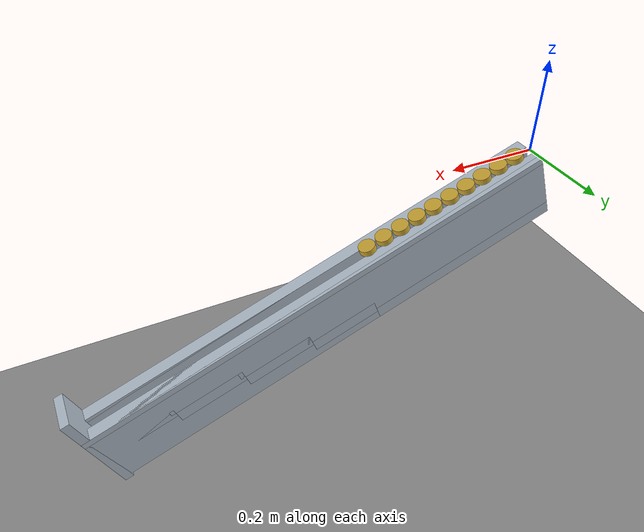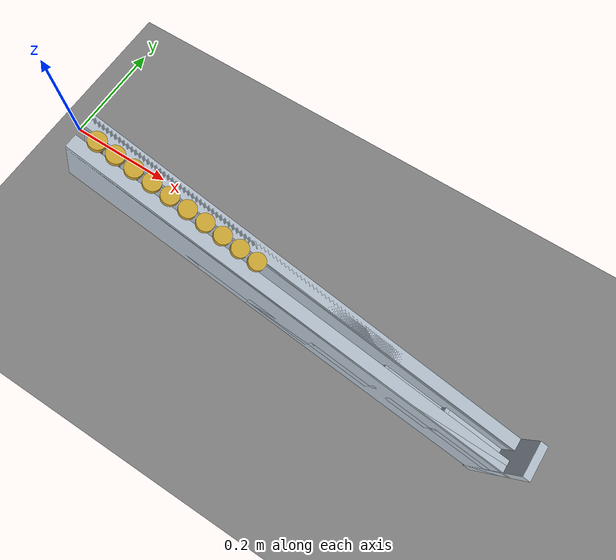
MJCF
<mujoco model="hang"><option timestep="0.0004" gravity="0 0 -9.81" integrator="implicitfast" cone="elliptic" impratio="10"><flag multiccd="enable"/></option>
<visual><global offwidth="1280" offheight="720"/></visual>
<worldbody><light pos="0.5 -1 2" dir="-0.3 0.5 -1"/><camera name="iso" pos="0.5262 -0.9000 0.0585" xyaxes="1.0000 -0.0000 0.0000 0.0000 0.3162 0.9487"/>
<geom name="shelf-1" type="box" pos="0.52366 -0.02700 -0.19858" size="0.56000 0.01500 0.00750" xyaxes="0.939693 0 -0.342020 0 1 0" rgba="0.7 0.75 0.8 1" friction="0.3 0.005 0.0001"/>
<geom name="shelf1" type="box" pos="0.52366 0.02700 -0.19858" size="0.56000 0.01500 0.00750" xyaxes="0.939693 0 -0.342020 0 1 0" rgba="0.7 0.75 0.8 1" friction="0.3 0.005 0.0001"/>
<geom name="side-1" type="box" pos="0.49887 -0.02700 -0.26671" size="0.56000 0.01500 0.08000" xyaxes="0.939693 0 -0.342020 0 1 0" rgba="0.7 0.75 0.8 1" friction="0.3 0.005 0.0001"/>
<geom name="side1" type="box" pos="0.49887 0.02700 -0.26671" size="0.56000 0.01500 0.08000" xyaxes="0.939693 0 -0.342020 0 1 0" rgba="0.7 0.75 0.8 1" friction="0.3 0.005 0.0001"/>
<geom name="floor0" type="box" pos="0.16654 0.00000 -0.21492" size="0.23000 0.04200 0.01500" xyaxes="0.939693 0 -0.342020 0 1 0" rgba="0.7 0.75 0.8 1" friction="0.3 0.005 0.0001"/>
<geom name="floor1" type="box" pos="0.46468 0.00000 -0.30215" size="0.08000 0.04200 0.01500" xyaxes="0.939693 0 -0.342020 0 1 0" rgba="0.7 0.75 0.8 1" friction="0.3 0.005 0.0001"/>
<geom name="riser1" type="box" pos="0.39591 0.00000 -0.27180" size="0.00500 0.04200 0.01010" xyaxes="0.939693 0 -0.342020 0 1 0" rgba="0.7 0.75 0.8 1" friction="0.3 0.005 0.0001"/>
<geom name="floor2" type="box" pos="0.62187 0.00000 -0.33808" size="0.08000 0.04200 0.01500" xyaxes="0.939693 0 -0.342020 0 1 0" rgba="0.7 0.75 0.8 1" friction="0.3 0.005 0.0001"/>
<geom name="riser2" type="box" pos="0.55311 0.00000 -0.30773" size="0.00500 0.04200 0.01010" xyaxes="0.939693 0 -0.342020 0 1 0" rgba="0.7 0.75 0.8 1" friction="0.3 0.005 0.0001"/>
<geom name="floor3" type="box" pos="0.77906 0.00000 -0.37401" size="0.08000 0.04200 0.01500" xyaxes="0.939693 0 -0.342020 0 1 0" rgba="0.7 0.75 0.8 1" friction="0.3 0.005 0.0001"/>
<geom name="riser3" type="box" pos="0.71030 0.00000 -0.34366" size="0.00500 0.04200 0.01010" xyaxes="0.939693 0 -0.342020 0 1 0" rgba="0.7 0.75 0.8 1" friction="0.3 0.005 0.0001"/>
<geom name="floor4" type="box" pos="0.93626 0.00000 -0.40994" size="0.08000 0.04200 0.01500" xyaxes="0.939693 0 -0.342020 0 1 0" rgba="0.7 0.75 0.8 1" friction="0.3 0.005 0.0001"/>
<geom name="riser4" type="box" pos="0.86749 0.00000 -0.37959" size="0.00500 0.04200 0.01010" xyaxes="0.939693 0 -0.342020 0 1 0" rgba="0.7 0.75 0.8 1" friction="0.3 0.005 0.0001"/>
<geom name="endwall" type="box" pos="1.02596 0.00000 -0.42663" size="0.01000 0.04200 0.12000" xyaxes="0.939693 0 -0.342020 0 1 0" rgba="0.7 0.75 0.8 1" friction="0.3 0.005 0.0001"/>
<geom name="ground" type="plane" pos="0 0 -0.6" size="3 3 0.1"/>
<body name="s0" pos="0.01040 0.00000 -0.08839" quat="0.984808 0 0.173648 0"><freejoint/>
<geom name="s0_sh" type="cylinder" size="0.01000 0.04000" pos="0 0 0.04000" density="7850" rgba="0.8 0.65 0.2 1" friction="0.3 0.005 0.0001"/>
<geom name="s0_hd" type="cylinder" size="0.01900 0.00700" pos="0 0 0.08700" density="7850" rgba="0.8 0.65 0.2 1" friction="0.3 0.005 0.0001"/>
</body>
<body name="s1" pos="0.05670 0.00000 -0.08396" quat="0.984808 0 0.173648 0"><freejoint/>
<geom name="s1_sh" type="cylinder" size="0.01000 0.03000" pos="0 0 0.03000" density="7850" rgba="0.8 0.65 0.2 1" friction="0.3 0.005 0.0001"/>
<geom name="s1_hd" type="cylinder" size="0.01900 0.00700" pos="0 0 0.06700" density="7850" rgba="0.8 0.65 0.2 1" friction="0.3 0.005 0.0001"/>
</body>
<body name="s2" pos="0.08249 0.00000 -0.13591" quat="0.984808 0 0.173648 0"><freejoint/>
<geom name="s2_sh" type="cylinder" size="0.01000 0.05000" pos="0 0 0.05000" density="7850" rgba="0.8 0.65 0.2 1" friction="0.3 0.005 0.0001"/>
<geom name="s2_hd" type="cylinder" size="0.01900 0.00700" pos="0 0 0.10700" density="7850" rgba="0.8 0.65 0.2 1" friction="0.3 0.005 0.0001"/>
</body>
<body name="s3" pos="0.11512 0.00000 -0.16907" quat="0.984808 0 0.173648 0"><freejoint/>
<geom name="s3_sh" type="cylinder" size="0.01000 0.06000" pos="0 0 0.06000" density="7850" rgba="0.8 0.65 0.2 1" friction="0.3 0.005 0.0001"/>
<geom name="s3_hd" type="cylinder" size="0.01900 0.00700" pos="0 0 0.12700" density="7850" rgba="0.8 0.65 0.2 1" friction="0.3 0.005 0.0001"/>
</body>
<body name="s4" pos="0.17511 0.00000 -0.12705" quat="0.984808 0 0.173648 0"><freejoint/>
<geom name="s4_sh" type="cylinder" size="0.01000 0.03000" pos="0 0 0.03000" density="7850" rgba="0.8 0.65 0.2 1" friction="0.3 0.005 0.0001"/>
<geom name="s4_hd" type="cylinder" size="0.01900 0.00700" pos="0 0 0.06700" density="7850" rgba="0.8 0.65 0.2 1" friction="0.3 0.005 0.0001"/>
</body>
<body name="s5" pos="0.22141 0.00000 -0.12262" quat="0.984808 0 0.173648 0"><freejoint/>
<geom name="s5_sh" type="cylinder" size="0.01000 0.02000" pos="0 0 0.02000" density="7850" rgba="0.8 0.65 0.2 1" friction="0.3 0.005 0.0001"/>
<geom name="s5_hd" type="cylinder" size="0.01900 0.00700" pos="0 0 0.04700" density="7850" rgba="0.8 0.65 0.2 1" friction="0.3 0.005 0.0001"/>
</body>
<body name="s6" pos="0.24720 0.00000 -0.17458" quat="0.984808 0 0.173648 0"><freejoint/>
<geom name="s6_sh" type="cylinder" size="0.01000 0.04000" pos="0 0 0.04000" density="7850" rgba="0.8 0.65 0.2 1" friction="0.3 0.005 0.0001"/>
<geom name="s6_hd" type="cylinder" size="0.01900 0.00700" pos="0 0 0.08700" density="7850" rgba="0.8 0.65 0.2 1" friction="0.3 0.005 0.0001"/>
</body>
<body name="s7" pos="0.27299 0.00000 -0.22653" quat="0.984808 0 0.173648 0"><freejoint/>
<geom name="s7_sh" type="cylinder" size="0.01000 0.06000" pos="0 0 0.06000" density="7850" rgba="0.8 0.65 0.2 1" friction="0.3 0.005 0.0001"/>
<geom name="s7_hd" type="cylinder" size="0.01900 0.00700" pos="0 0 0.12700" density="7850" rgba="0.8 0.65 0.2 1" friction="0.3 0.005 0.0001"/>
</body>
<body name="s8" pos="0.33981 0.00000 -0.16572" quat="0.984808 0 0.173648 0"><freejoint/>
<geom name="s8_sh" type="cylinder" size="0.01000 0.02000" pos="0 0 0.02000" density="7850" rgba="0.8 0.65 0.2 1" friction="0.3 0.005 0.0001"/>
<geom name="s8_hd" type="cylinder" size="0.01900 0.00700" pos="0 0 0.04700" density="7850" rgba="0.8 0.65 0.2 1" friction="0.3 0.005 0.0001"/>
</body>
<body name="s9" pos="0.35876 0.00000 -0.23646" quat="0.984808 0 0.173648 0"><freejoint/>
<geom name="s9_sh" type="cylinder" size="0.01000 0.05000" pos="0 0 0.05000" density="7850" rgba="0.8 0.65 0.2 1" friction="0.3 0.005 0.0001"/>
<geom name="s9_hd" type="cylinder" size="0.01900 0.00700" pos="0 0 0.10700" density="7850" rgba="0.8 0.65 0.2 1" friction="0.3 0.005 0.0001"/>
</body>
</worldbody></mujoco>
